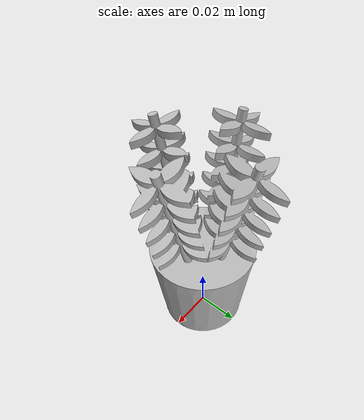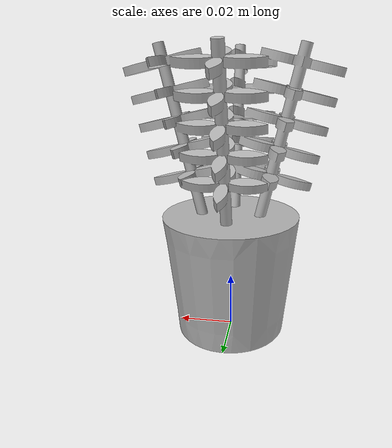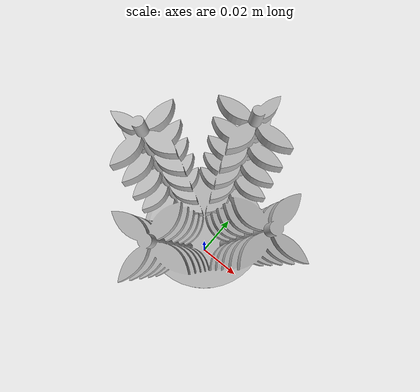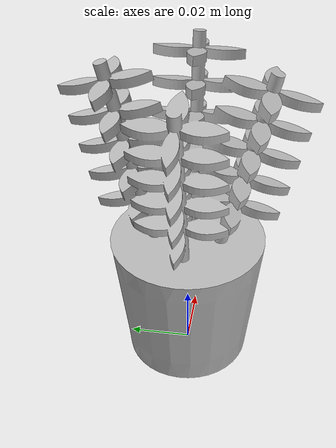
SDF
<?xml version='1.0'?>
<sdf version='1.7'>
  <model name='Plant_white'>
   	<static>false</static>

    <link name='link_0'>
			<gravity>1</gravity>
      <inertial>
        <pose>0 0 0.02 0 0 0</pose>
        <mass>0.025</mass>
        <inertia>
          <ixx>2.5e-5</ixx>
          <ixy>0</ixy>
          <ixz>0</ixz>
          <iyy>2.5e-5</iyy>
          <iyz>0</iyz>
          <izz>8e-6</izz>
        </inertia>
      </inertial>
      <pose>0 0 0 0 0 0</pose>
      <visual name='visual'>
        <pose>0 0 0 0 -0 0</pose>
        <geometry>
          <mesh>
            <uri>plant_white.dae</uri>
            <scale>0.001 0.001 0.001</scale>
          </mesh>
        </geometry>
        <transparency>0</transparency>
        <cast_shadows>1</cast_shadows>
      </visual>

      <collision name='collision'>
        <laser_retro>0</laser_retro>
        <max_contacts>3</max_contacts>
        <pose>0 0 0.05 0 -0 0</pose>
        <geometry>
          <cylinder>
            <radius>0.025</radius>
            <length>0.1</length>
          </cylinder>
        </geometry>
        <surface>
          <friction>
            <ode>
              <mu>0.9</mu>
              <mu2>0.9</mu2>
            </ode>
            <torsional>
              <coefficient>1</coefficient>
              <patch_radius>0</patch_radius>
              <surface_radius>0</surface_radius>
              <use_patch_radius>1</use_patch_radius>
              <ode>
                <slip>0</slip>
              </ode>
            </torsional>
          </friction>

          <contact>
            <ode>
              <soft_cfm>0</soft_cfm>
              <soft_erp>0.2</soft_erp>
              <kp>1e1</kp>
              <kd>1e9</kd>
              <max_vel>0</max_vel>
              <min_depth>0.01</min_depth>
            </ode>
          </contact>
        </surface>
      </collision>
    </link>
    <pose>0 0 0 0 0 0</pose>

    <allow_auto_disable>1</allow_auto_disable>
  </model>
</sdf>
